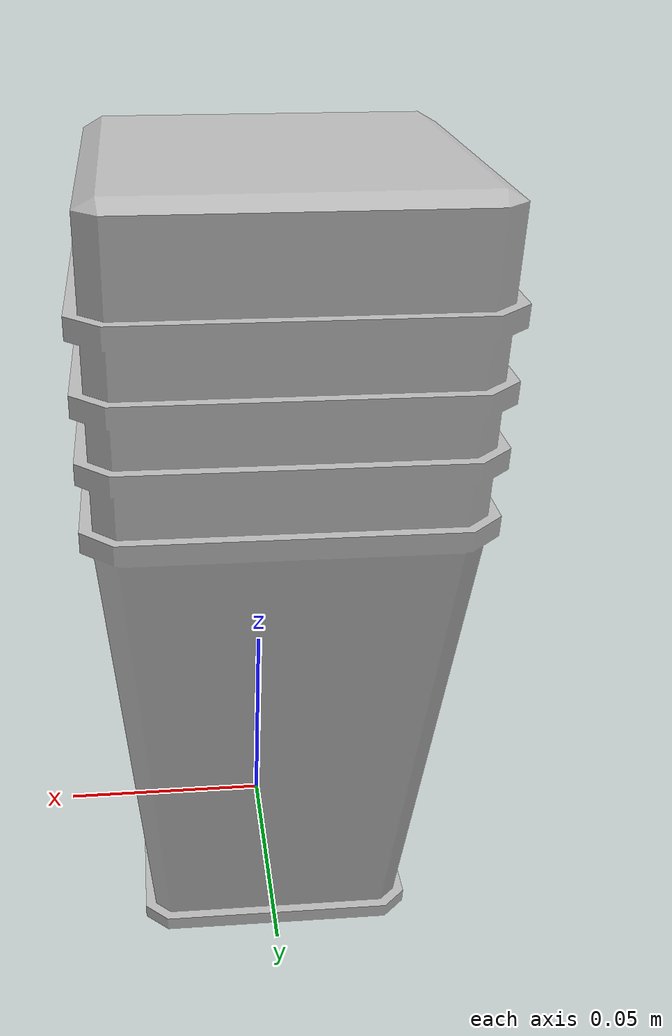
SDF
<?xml version="1.0" ?>
<sdf version="1.6">
  <model name="aws_robomaker_residential_LightC_01">
    <link name="link">
      <inertial>
        <mass>1</mass>
      </inertial>
      <collision name="collision">
        <geometry>
          <mesh>
            <uri>model:///aws_robomaker_residential_LightC_01/meshes/aws_LightC_01_collision.DAE</uri>
            <scale>1 1 1</scale>
          </mesh>
        </geometry>
      </collision>
      <visual name="visual">
	    <geometry>
          <mesh>
            <uri>model:///aws_robomaker_residential_LightC_01/meshes/aws_LightC_01_visual.DAE</uri>
          </mesh>
        </geometry>
      <meta> <layer> 2 </layer></meta>
</visual>
    </link>
  </model>
</sdf>
